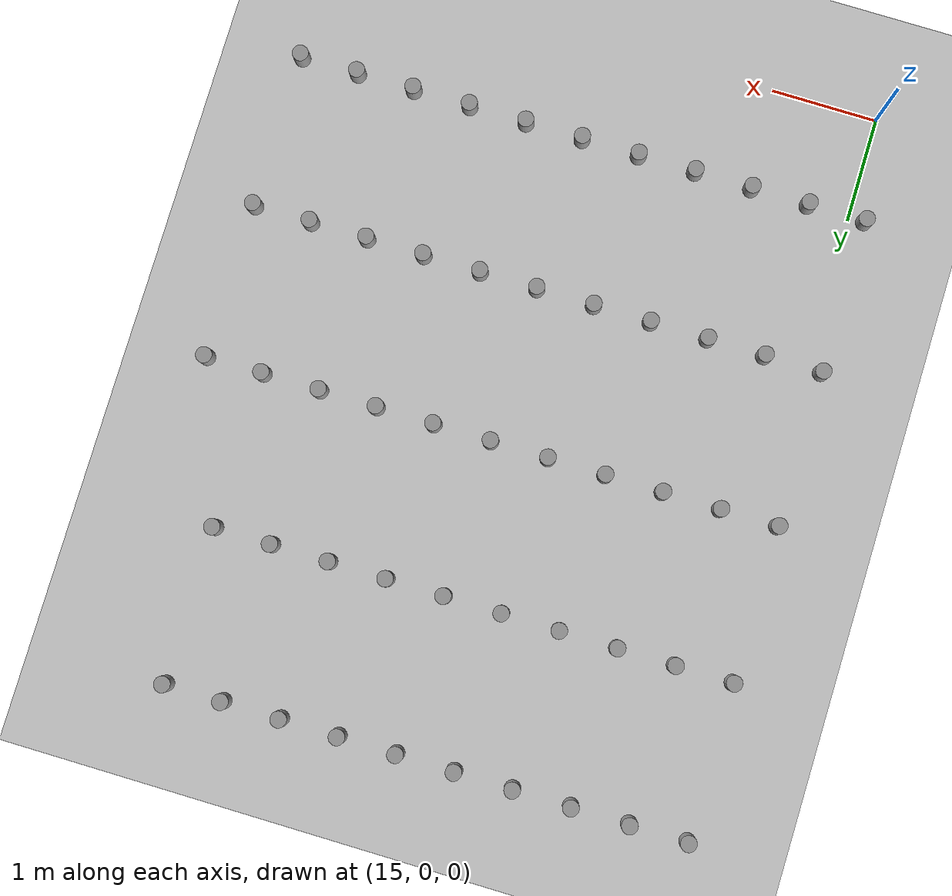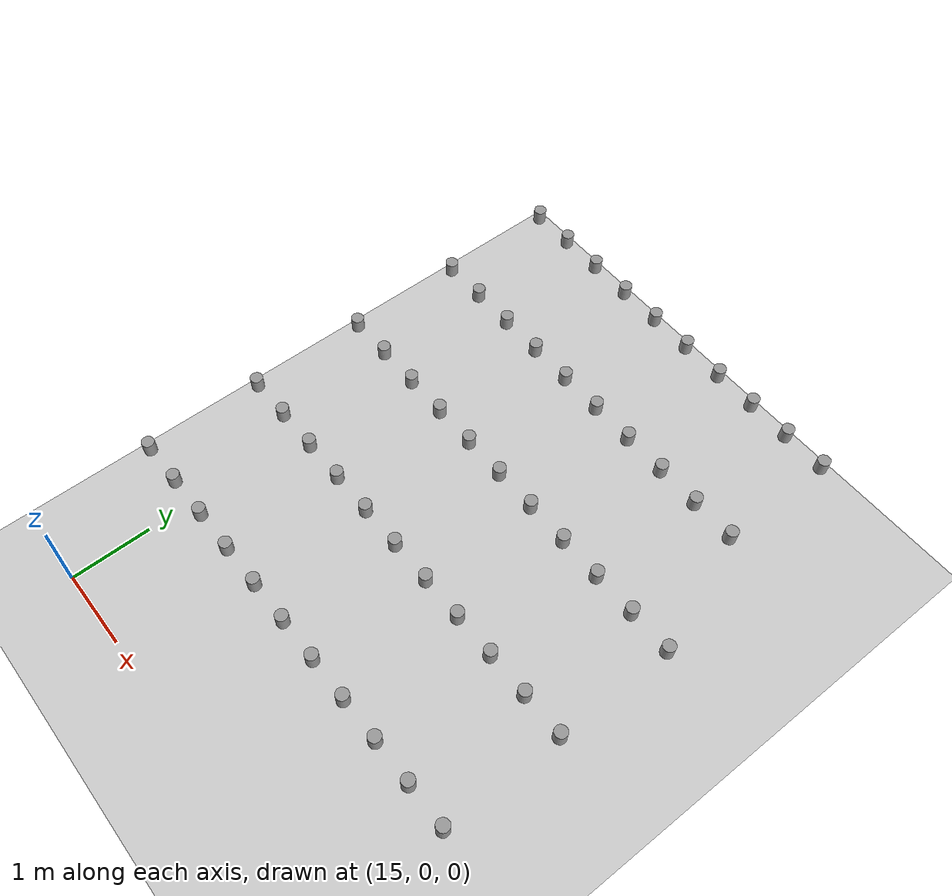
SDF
<sdf version="1.4">
 <world name="default">
  <model name="pot_320">
   <static>1</static>
   <link name="link_0">
    <collision name="collision">
     <geometry><cylinder><length>0.17</length><radius>0.07</radius></cylinder></geometry>
    </collision>
    <visual name="visual">
     <geometry><cylinder><length>0.17</length><radius>0.07</radius></cylinder></geometry>
     <material>
      <script><uri>file://media/materials/scripts/gazebo.material</uri><name>Gazebo/Grey</name></script>
      <emissive>0 0 0 1</emissive>
      <shader type="vertex"><normal_map>__default__</normal_map></shader>
      <specular>0.01 0.01 0.01 1</specular>
      <lighting>1</lighting>
      <ambient>0.1 0.1 0.1 1</ambient>
      <diffuse>0.05 0.05 0.05 1</diffuse>
     </material>
     <cast_shadows>0</cast_shadows>
    </visual>
    <pose>15.024 1.350 1.467 0.0 0.0 0.0</pose>
   </link>
  </model>
  <model name="pot_321">
   <static>1</static>
   <link name="link_0">
    <collision name="collision">
     <geometry><cylinder><length>0.17</length><radius>0.07</radius></cylinder></geometry>
    </collision>
    <visual name="visual">
     <geometry><cylinder><length>0.17</length><radius>0.07</radius></cylinder></geometry>
     <material>
      <script><uri>file://media/materials/scripts/gazebo.material</uri><name>Gazebo/Grey</name></script>
      <emissive>0 0 0 1</emissive>
      <shader type="vertex"><normal_map>__default__</normal_map></shader>
      <specular>0.01 0.01 0.01 1</specular>
      <lighting>1</lighting>
      <ambient>0.1 0.1 0.1 1</ambient>
      <diffuse>0.05 0.05 0.05 1</diffuse>
     </material>
     <cast_shadows>0</cast_shadows>
    </visual>
    <pose>15.024 2.700 1.467 0.0 0.0 0.0</pose>
   </link>
  </model>
  <model name="pot_322">
   <static>1</static>
   <link name="link_0">
    <collision name="collision">
     <geometry><cylinder><length>0.17</length><radius>0.07</radius></cylinder></geometry>
    </collision>
    <visual name="visual">
     <geometry><cylinder><length>0.17</length><radius>0.07</radius></cylinder></geometry>
     <material>
      <script><uri>file://media/materials/scripts/gazebo.material</uri><name>Gazebo/Grey</name></script>
      <emissive>0 0 0 1</emissive>
      <shader type="vertex"><normal_map>__default__</normal_map></shader>
      <specular>0.01 0.01 0.01 1</specular>
      <lighting>1</lighting>
      <ambient>0.1 0.1 0.1 1</ambient>
      <diffuse>0.05 0.05 0.05 1</diffuse>
     </material>
     <cast_shadows>0</cast_shadows>
    </visual>
    <pose>15.024 4.050 1.467 0.0 0.0 0.0</pose>
   </link>
  </model>
  <model name="pot_323">
   <static>1</static>
   <link name="link_0">
    <collision name="collision">
     <geometry><cylinder><length>0.17</length><radius>0.07</radius></cylinder></geometry>
    </collision>
    <visual name="visual">
     <geometry><cylinder><length>0.17</length><radius>0.07</radius></cylinder></geometry>
     <material>
      <script><uri>file://media/materials/scripts/gazebo.material</uri><name>Gazebo/Grey</name></script>
      <emissive>0 0 0 1</emissive>
      <shader type="vertex"><normal_map>__default__</normal_map></shader>
      <specular>0.01 0.01 0.01 1</specular>
      <lighting>1</lighting>
      <ambient>0.1 0.1 0.1 1</ambient>
      <diffuse>0.05 0.05 0.05 1</diffuse>
     </material>
     <cast_shadows>0</cast_shadows>
    </visual>
    <pose>15.024 5.400 1.467 0.0 0.0 0.0</pose>
   </link>
  </model>
  <model name="pot_324">
   <static>1</static>
   <link name="link_0">
    <collision name="collision">
     <geometry><cylinder><length>0.17</length><radius>0.07</radius></cylinder></geometry>
    </collision>
    <visual name="visual">
     <geometry><cylinder><length>0.17</length><radius>0.07</radius></cylinder></geometry>
     <material>
      <script><uri>file://media/materials/scripts/gazebo.material</uri><name>Gazebo/Grey</name></script>
      <emissive>0 0 0 1</emissive>
      <shader type="vertex"><normal_map>__default__</normal_map></shader>
      <specular>0.01 0.01 0.01 1</specular>
      <lighting>1</lighting>
      <ambient>0.1 0.1 0.1 1</ambient>
      <diffuse>0.05 0.05 0.05 1</diffuse>
     </material>
     <cast_shadows>0</cast_shadows>
    </visual>
    <pose>15.024 6.750 1.467 0.0 0.0 0.0</pose>
   </link>
  </model>
  <model name="pot_325">
   <static>1</static>
   <link name="link_0">
    <collision name="collision">
     <geometry><cylinder><length>0.17</length><radius>0.07</radius></cylinder></geometry>
    </collision>
    <visual name="visual">
     <geometry><cylinder><length>0.17</length><radius>0.07</radius></cylinder></geometry>
     <material>
      <script><uri>file://media/materials/scripts/gazebo.material</uri><name>Gazebo/Grey</name></script>
      <emissive>0 0 0 1</emissive>
      <shader type="vertex"><normal_map>__default__</normal_map></shader>
      <specular>0.01 0.01 0.01 1</specular>
      <lighting>1</lighting>
      <ambient>0.1 0.1 0.1 1</ambient>
      <diffuse>0.05 0.05 0.05 1</diffuse>
     </material>
     <cast_shadows>0</cast_shadows>
    </visual>
    <pose>15.524 1.350 1.467 0.0 0.0 0.0</pose>
   </link>
  </model>
  <model name="pot_326">
   <static>1</static>
   <link name="link_0">
    <collision name="collision">
     <geometry><cylinder><length>0.17</length><radius>0.07</radius></cylinder></geometry>
    </collision>
    <visual name="visual">
     <geometry><cylinder><length>0.17</length><radius>0.07</radius></cylinder></geometry>
     <material>
      <script><uri>file://media/materials/scripts/gazebo.material</uri><name>Gazebo/Grey</name></script>
      <emissive>0 0 0 1</emissive>
      <shader type="vertex"><normal_map>__default__</normal_map></shader>
      <specular>0.01 0.01 0.01 1</specular>
      <lighting>1</lighting>
      <ambient>0.1 0.1 0.1 1</ambient>
      <diffuse>0.05 0.05 0.05 1</diffuse>
     </material>
     <cast_shadows>0</cast_shadows>
    </visual>
    <pose>15.524 2.700 1.467 0.0 0.0 0.0</pose>
   </link>
  </model>
  <model name="pot_327">
   <static>1</static>
   <link name="link_0">
    <collision name="collision">
     <geometry><cylinder><length>0.17</length><radius>0.07</radius></cylinder></geometry>
    </collision>
    <visual name="visual">
     <geometry><cylinder><length>0.17</length><radius>0.07</radius></cylinder></geometry>
     <material>
      <script><uri>file://media/materials/scripts/gazebo.material</uri><name>Gazebo/Grey</name></script>
      <emissive>0 0 0 1</emissive>
      <shader type="vertex"><normal_map>__default__</normal_map></shader>
      <specular>0.01 0.01 0.01 1</specular>
      <lighting>1</lighting>
      <ambient>0.1 0.1 0.1 1</ambient>
      <diffuse>0.05 0.05 0.05 1</diffuse>
     </material>
     <cast_shadows>0</cast_shadows>
    </visual>
    <pose>15.524 4.050 1.467 0.0 0.0 0.0</pose>
   </link>
  </model>
  <model name="pot_328">
   <static>1</static>
   <link name="link_0">
    <collision name="collision">
     <geometry><cylinder><length>0.17</length><radius>0.07</radius></cylinder></geometry>
    </collision>
    <visual name="visual">
     <geometry><cylinder><length>0.17</length><radius>0.07</radius></cylinder></geometry>
     <material>
      <script><uri>file://media/materials/scripts/gazebo.material</uri><name>Gazebo/Grey</name></script>
      <emissive>0 0 0 1</emissive>
      <shader type="vertex"><normal_map>__default__</normal_map></shader>
      <specular>0.01 0.01 0.01 1</specular>
      <lighting>1</lighting>
      <ambient>0.1 0.1 0.1 1</ambient>
      <diffuse>0.05 0.05 0.05 1</diffuse>
     </material>
     <cast_shadows>0</cast_shadows>
    </visual>
    <pose>15.524 5.400 1.467 0.0 0.0 0.0</pose>
   </link>
  </model>
  <model name="pot_329">
   <static>1</static>
   <link name="link_0">
    <collision name="collision">
     <geometry><cylinder><length>0.17</length><radius>0.07</radius></cylinder></geometry>
    </collision>
    <visual name="visual">
     <geometry><cylinder><length>0.17</length><radius>0.07</radius></cylinder></geometry>
     <material>
      <script><uri>file://media/materials/scripts/gazebo.material</uri><name>Gazebo/Grey</name></script>
      <emissive>0 0 0 1</emissive>
      <shader type="vertex"><normal_map>__default__</normal_map></shader>
      <specular>0.01 0.01 0.01 1</specular>
      <lighting>1</lighting>
      <ambient>0.1 0.1 0.1 1</ambient>
      <diffuse>0.05 0.05 0.05 1</diffuse>
     </material>
     <cast_shadows>0</cast_shadows>
    </visual>
    <pose>15.524 6.750 1.467 0.0 0.0 0.0</pose>
   </link>
  </model>
  <model name="pot_330">
   <static>1</static>
   <link name="link_0">
    <collision name="collision">
     <geometry><cylinder><length>0.17</length><radius>0.07</radius></cylinder></geometry>
    </collision>
    <visual name="visual">
     <geometry><cylinder><length>0.17</length><radius>0.07</radius></cylinder></geometry>
     <material>
      <script><uri>file://media/materials/scripts/gazebo.material</uri><name>Gazebo/Grey</name></script>
      <emissive>0 0 0 1</emissive>
      <shader type="vertex"><normal_map>__default__</normal_map></shader>
      <specular>0.01 0.01 0.01 1</specular>
      <lighting>1</lighting>
      <ambient>0.1 0.1 0.1 1</ambient>
      <diffuse>0.05 0.05 0.05 1</diffuse>
     </material>
     <cast_shadows>0</cast_shadows>
    </visual>
    <pose>16.024 1.350 1.467 0.0 0.0 0.0</pose>
   </link>
  </model>
  <model name="pot_331">
   <static>1</static>
   <link name="link_0">
    <collision name="collision">
     <geometry><cylinder><length>0.17</length><radius>0.07</radius></cylinder></geometry>
    </collision>
    <visual name="visual">
     <geometry><cylinder><length>0.17</length><radius>0.07</radius></cylinder></geometry>
     <material>
      <script><uri>file://media/materials/scripts/gazebo.material</uri><name>Gazebo/Grey</name></script>
      <emissive>0 0 0 1</emissive>
      <shader type="vertex"><normal_map>__default__</normal_map></shader>
      <specular>0.01 0.01 0.01 1</specular>
      <lighting>1</lighting>
      <ambient>0.1 0.1 0.1 1</ambient>
      <diffuse>0.05 0.05 0.05 1</diffuse>
     </material>
     <cast_shadows>0</cast_shadows>
    </visual>
    <pose>16.024 2.700 1.467 0.0 0.0 0.0</pose>
   </link>
  </model>
  <model name="pot_332">
   <static>1</static>
   <link name="link_0">
    <collision name="collision">
     <geometry><cylinder><length>0.17</length><radius>0.07</radius></cylinder></geometry>
    </collision>
    <visual name="visual">
     <geometry><cylinder><length>0.17</length><radius>0.07</radius></cylinder></geometry>
     <material>
      <script><uri>file://media/materials/scripts/gazebo.material</uri><name>Gazebo/Grey</name></script>
      <emissive>0 0 0 1</emissive>
      <shader type="vertex"><normal_map>__default__</normal_map></shader>
      <specular>0.01 0.01 0.01 1</specular>
      <lighting>1</lighting>
      <ambient>0.1 0.1 0.1 1</ambient>
      <diffuse>0.05 0.05 0.05 1</diffuse>
     </material>
     <cast_shadows>0</cast_shadows>
    </visual>
    <pose>16.024 4.050 1.467 0.0 0.0 0.0</pose>
   </link>
  </model>
  <model name="pot_333">
   <static>1</static>
   <link name="link_0">
    <collision name="collision">
     <geometry><cylinder><length>0.17</length><radius>0.07</radius></cylinder></geometry>
    </collision>
    <visual name="visual">
     <geometry><cylinder><length>0.17</length><radius>0.07</radius></cylinder></geometry>
     <material>
      <script><uri>file://media/materials/scripts/gazebo.material</uri><name>Gazebo/Grey</name></script>
      <emissive>0 0 0 1</emissive>
      <shader type="vertex"><normal_map>__default__</normal_map></shader>
      <specular>0.01 0.01 0.01 1</specular>
      <lighting>1</lighting>
      <ambient>0.1 0.1 0.1 1</ambient>
      <diffuse>0.05 0.05 0.05 1</diffuse>
     </material>
     <cast_shadows>0</cast_shadows>
    </visual>
    <pose>16.024 5.400 1.467 0.0 0.0 0.0</pose>
   </link>
  </model>
  <model name="pot_334">
   <static>1</static>
   <link name="link_0">
    <collision name="collision">
     <geometry><cylinder><length>0.17</length><radius>0.07</radius></cylinder></geometry>
    </collision>
    <visual name="visual">
     <geometry><cylinder><length>0.17</length><radius>0.07</radius></cylinder></geometry>
     <material>
      <script><uri>file://media/materials/scripts/gazebo.material</uri><name>Gazebo/Grey</name></script>
      <emissive>0 0 0 1</emissive>
      <shader type="vertex"><normal_map>__default__</normal_map></shader>
      <specular>0.01 0.01 0.01 1</specular>
      <lighting>1</lighting>
      <ambient>0.1 0.1 0.1 1</ambient>
      <diffuse>0.05 0.05 0.05 1</diffuse>
     </material>
     <cast_shadows>0</cast_shadows>
    </visual>
    <pose>16.024 6.750 1.467 0.0 0.0 0.0</pose>
   </link>
  </model>
  <model name="pot_335">
   <static>1</static>
   <link name="link_0">
    <collision name="collision">
     <geometry><cylinder><length>0.17</length><radius>0.07</radius></cylinder></geometry>
    </collision>
    <visual name="visual">
     <geometry><cylinder><length>0.17</length><radius>0.07</radius></cylinder></geometry>
     <material>
      <script><uri>file://media/materials/scripts/gazebo.material</uri><name>Gazebo/Grey</name></script>
      <emissive>0 0 0 1</emissive>
      <shader type="vertex"><normal_map>__default__</normal_map></shader>
      <specular>0.01 0.01 0.01 1</specular>
      <lighting>1</lighting>
      <ambient>0.1 0.1 0.1 1</ambient>
      <diffuse>0.05 0.05 0.05 1</diffuse>
     </material>
     <cast_shadows>0</cast_shadows>
    </visual>
    <pose>16.524 1.350 1.467 0.0 0.0 0.0</pose>
   </link>
  </model>
  <model name="pot_336">
   <static>1</static>
   <link name="link_0">
    <collision name="collision">
     <geometry><cylinder><length>0.17</length><radius>0.07</radius></cylinder></geometry>
    </collision>
    <visual name="visual">
     <geometry><cylinder><length>0.17</length><radius>0.07</radius></cylinder></geometry>
     <material>
      <script><uri>file://media/materials/scripts/gazebo.material</uri><name>Gazebo/Grey</name></script>
      <emissive>0 0 0 1</emissive>
      <shader type="vertex"><normal_map>__default__</normal_map></shader>
      <specular>0.01 0.01 0.01 1</specular>
      <lighting>1</lighting>
      <ambient>0.1 0.1 0.1 1</ambient>
      <diffuse>0.05 0.05 0.05 1</diffuse>
     </material>
     <cast_shadows>0</cast_shadows>
    </visual>
    <pose>16.524 2.700 1.467 0.0 0.0 0.0</pose>
   </link>
  </model>
  <model name="pot_337">
   <static>1</static>
   <link name="link_0">
    <collision name="collision">
     <geometry><cylinder><length>0.17</length><radius>0.07</radius></cylinder></geometry>
    </collision>
    <visual name="visual">
     <geometry><cylinder><length>0.17</length><radius>0.07</radius></cylinder></geometry>
     <material>
      <script><uri>file://media/materials/scripts/gazebo.material</uri><name>Gazebo/Grey</name></script>
      <emissive>0 0 0 1</emissive>
      <shader type="vertex"><normal_map>__default__</normal_map></shader>
      <specular>0.01 0.01 0.01 1</specular>
      <lighting>1</lighting>
      <ambient>0.1 0.1 0.1 1</ambient>
      <diffuse>0.05 0.05 0.05 1</diffuse>
     </material>
     <cast_shadows>0</cast_shadows>
    </visual>
    <pose>16.524 4.050 1.467 0.0 0.0 0.0</pose>
   </link>
  </model>
  <model name="pot_338">
   <static>1</static>
   <link name="link_0">
    <collision name="collision">
     <geometry><cylinder><length>0.17</length><radius>0.07</radius></cylinder></geometry>
    </collision>
    <visual name="visual">
     <geometry><cylinder><length>0.17</length><radius>0.07</radius></cylinder></geometry>
     <material>
      <script><uri>file://media/materials/scripts/gazebo.material</uri><name>Gazebo/Grey</name></script>
      <emissive>0 0 0 1</emissive>
      <shader type="vertex"><normal_map>__default__</normal_map></shader>
      <specular>0.01 0.01 0.01 1</specular>
      <lighting>1</lighting>
      <ambient>0.1 0.1 0.1 1</ambient>
      <diffuse>0.05 0.05 0.05 1</diffuse>
     </material>
     <cast_shadows>0</cast_shadows>
    </visual>
    <pose>16.524 5.400 1.467 0.0 0.0 0.0</pose>
   </link>
  </model>
  <model name="pot_339">
   <static>1</static>
   <link name="link_0">
    <collision name="collision">
     <geometry><cylinder><length>0.17</length><radius>0.07</radius></cylinder></geometry>
    </collision>
    <visual name="visual">
     <geometry><cylinder><length>0.17</length><radius>0.07</radius></cylinder></geometry>
     <material>
      <script><uri>file://media/materials/scripts/gazebo.material</uri><name>Gazebo/Grey</name></script>
      <emissive>0 0 0 1</emissive>
      <shader type="vertex"><normal_map>__default__</normal_map></shader>
      <specular>0.01 0.01 0.01 1</specular>
      <lighting>1</lighting>
      <ambient>0.1 0.1 0.1 1</ambient>
      <diffuse>0.05 0.05 0.05 1</diffuse>
     </material>
     <cast_shadows>0</cast_shadows>
    </visual>
    <pose>16.524 6.750 1.467 0.0 0.0 0.0</pose>
   </link>
  </model>
  <model name="pot_340">
   <static>1</static>
   <link name="link_0">
    <collision name="collision">
     <geometry><cylinder><length>0.17</length><radius>0.07</radius></cylinder></geometry>
    </collision>
    <visual name="visual">
     <geometry><cylinder><length>0.17</length><radius>0.07</radius></cylinder></geometry>
     <material>
      <script><uri>file://media/materials/scripts/gazebo.material</uri><name>Gazebo/Grey</name></script>
      <emissive>0 0 0 1</emissive>
      <shader type="vertex"><normal_map>__default__</normal_map></shader>
      <specular>0.01 0.01 0.01 1</specular>
      <lighting>1</lighting>
      <ambient>0.1 0.1 0.1 1</ambient>
      <diffuse>0.05 0.05 0.05 1</diffuse>
     </material>
     <cast_shadows>0</cast_shadows>
    </visual>
    <pose>17.024 1.350 1.467 0.0 0.0 0.0</pose>
   </link>
  </model>
  <model name="pot_341">
   <static>1</static>
   <link name="link_0">
    <collision name="collision">
     <geometry><cylinder><length>0.17</length><radius>0.07</radius></cylinder></geometry>
    </collision>
    <visual name="visual">
     <geometry><cylinder><length>0.17</length><radius>0.07</radius></cylinder></geometry>
     <material>
      <script><uri>file://media/materials/scripts/gazebo.material</uri><name>Gazebo/Grey</name></script>
      <emissive>0 0 0 1</emissive>
      <shader type="vertex"><normal_map>__default__</normal_map></shader>
      <specular>0.01 0.01 0.01 1</specular>
      <lighting>1</lighting>
      <ambient>0.1 0.1 0.1 1</ambient>
      <diffuse>0.05 0.05 0.05 1</diffuse>
     </material>
     <cast_shadows>0</cast_shadows>
    </visual>
    <pose>17.024 2.700 1.467 0.0 0.0 0.0</pose>
   </link>
  </model>
  <model name="pot_342">
   <static>1</static>
   <link name="link_0">
    <collision name="collision">
     <geometry><cylinder><length>0.17</length><radius>0.07</radius></cylinder></geometry>
    </collision>
    <visual name="visual">
     <geometry><cylinder><length>0.17</length><radius>0.07</radius></cylinder></geometry>
     <material>
      <script><uri>file://media/materials/scripts/gazebo.material</uri><name>Gazebo/Grey</name></script>
      <emissive>0 0 0 1</emissive>
      <shader type="vertex"><normal_map>__default__</normal_map></shader>
      <specular>0.01 0.01 0.01 1</specular>
      <lighting>1</lighting>
      <ambient>0.1 0.1 0.1 1</ambient>
      <diffuse>0.05 0.05 0.05 1</diffuse>
     </material>
     <cast_shadows>0</cast_shadows>
    </visual>
    <pose>17.024 4.050 1.467 0.0 0.0 0.0</pose>
   </link>
  </model>
  <model name="pot_343">
   <static>1</static>
   <link name="link_0">
    <collision name="collision">
     <geometry><cylinder><length>0.17</length><radius>0.07</radius></cylinder></geometry>
    </collision>
    <visual name="visual">
     <geometry><cylinder><length>0.17</length><radius>0.07</radius></cylinder></geometry>
     <material>
      <script><uri>file://media/materials/scripts/gazebo.material</uri><name>Gazebo/Grey</name></script>
      <emissive>0 0 0 1</emissive>
      <shader type="vertex"><normal_map>__default__</normal_map></shader>
      <specular>0.01 0.01 0.01 1</specular>
      <lighting>1</lighting>
      <ambient>0.1 0.1 0.1 1</ambient>
      <diffuse>0.05 0.05 0.05 1</diffuse>
     </material>
     <cast_shadows>0</cast_shadows>
    </visual>
    <pose>17.024 5.400 1.467 0.0 0.0 0.0</pose>
   </link>
  </model>
  <model name="pot_344">
   <static>1</static>
   <link name="link_0">
    <collision name="collision">
     <geometry><cylinder><length>0.17</length><radius>0.07</radius></cylinder></geometry>
    </collision>
    <visual name="visual">
     <geometry><cylinder><length>0.17</length><radius>0.07</radius></cylinder></geometry>
     <material>
      <script><uri>file://media/materials/scripts/gazebo.material</uri><name>Gazebo/Grey</name></script>
      <emissive>0 0 0 1</emissive>
      <shader type="vertex"><normal_map>__default__</normal_map></shader>
      <specular>0.01 0.01 0.01 1</specular>
      <lighting>1</lighting>
      <ambient>0.1 0.1 0.1 1</ambient>
      <diffuse>0.05 0.05 0.05 1</diffuse>
     </material>
     <cast_shadows>0</cast_shadows>
    </visual>
    <pose>17.024 6.750 1.467 0.0 0.0 0.0</pose>
   </link>
  </model>
  <model name="pot_345">
   <static>1</static>
   <link name="link_0">
    <collision name="collision">
     <geometry><cylinder><length>0.17</length><radius>0.07</radius></cylinder></geometry>
    </collision>
    <visual name="visual">
     <geometry><cylinder><length>0.17</length><radius>0.07</radius></cylinder></geometry>
     <material>
      <script><uri>file://media/materials/scripts/gazebo.material</uri><name>Gazebo/Grey</name></script>
      <emissive>0 0 0 1</emissive>
      <shader type="vertex"><normal_map>__default__</normal_map></shader>
      <specular>0.01 0.01 0.01 1</specular>
      <lighting>1</lighting>
      <ambient>0.1 0.1 0.1 1</ambient>
      <diffuse>0.05 0.05 0.05 1</diffuse>
     </material>
     <cast_shadows>0</cast_shadows>
    </visual>
    <pose>17.524 1.350 1.467 0.0 0.0 0.0</pose>
   </link>
  </model>
  <model name="pot_346">
   <static>1</static>
   <link name="link_0">
    <collision name="collision">
     <geometry><cylinder><length>0.17</length><radius>0.07</radius></cylinder></geometry>
    </collision>
    <visual name="visual">
     <geometry><cylinder><length>0.17</length><radius>0.07</radius></cylinder></geometry>
     <material>
      <script><uri>file://media/materials/scripts/gazebo.material</uri><name>Gazebo/Grey</name></script>
      <emissive>0 0 0 1</emissive>
      <shader type="vertex"><normal_map>__default__</normal_map></shader>
      <specular>0.01 0.01 0.01 1</specular>
      <lighting>1</lighting>
      <ambient>0.1 0.1 0.1 1</ambient>
      <diffuse>0.05 0.05 0.05 1</diffuse>
     </material>
     <cast_shadows>0</cast_shadows>
    </visual>
    <pose>17.524 2.700 1.467 0.0 0.0 0.0</pose>
   </link>
  </model>
  <model name="pot_347">
   <static>1</static>
   <link name="link_0">
    <collision name="collision">
     <geometry><cylinder><length>0.17</length><radius>0.07</radius></cylinder></geometry>
    </collision>
    <visual name="visual">
     <geometry><cylinder><length>0.17</length><radius>0.07</radius></cylinder></geometry>
     <material>
      <script><uri>file://media/materials/scripts/gazebo.material</uri><name>Gazebo/Grey</name></script>
      <emissive>0 0 0 1</emissive>
      <shader type="vertex"><normal_map>__default__</normal_map></shader>
      <specular>0.01 0.01 0.01 1</specular>
      <lighting>1</lighting>
      <ambient>0.1 0.1 0.1 1</ambient>
      <diffuse>0.05 0.05 0.05 1</diffuse>
     </material>
     <cast_shadows>0</cast_shadows>
    </visual>
    <pose>17.524 4.050 1.467 0.0 0.0 0.0</pose>
   </link>
  </model>
  <model name="pot_348">
   <static>1</static>
   <link name="link_0">
    <collision name="collision">
     <geometry><cylinder><length>0.17</length><radius>0.07</radius></cylinder></geometry>
    </collision>
    <visual name="visual">
     <geometry><cylinder><length>0.17</length><radius>0.07</radius></cylinder></geometry>
     <material>
      <script><uri>file://media/materials/scripts/gazebo.material</uri><name>Gazebo/Grey</name></script>
      <emissive>0 0 0 1</emissive>
      <shader type="vertex"><normal_map>__default__</normal_map></shader>
      <specular>0.01 0.01 0.01 1</specular>
      <lighting>1</lighting>
      <ambient>0.1 0.1 0.1 1</ambient>
      <diffuse>0.05 0.05 0.05 1</diffuse>
     </material>
     <cast_shadows>0</cast_shadows>
    </visual>
    <pose>17.524 5.400 1.467 0.0 0.0 0.0</pose>
   </link>
  </model>
  <model name="pot_349">
   <static>1</static>
   <link name="link_0">
    <collision name="collision">
     <geometry><cylinder><length>0.17</length><radius>0.07</radius></cylinder></geometry>
    </collision>
    <visual name="visual">
     <geometry><cylinder><length>0.17</length><radius>0.07</radius></cylinder></geometry>
     <material>
      <script><uri>file://media/materials/scripts/gazebo.material</uri><name>Gazebo/Grey</name></script>
      <emissive>0 0 0 1</emissive>
      <shader type="vertex"><normal_map>__default__</normal_map></shader>
      <specular>0.01 0.01 0.01 1</specular>
      <lighting>1</lighting>
      <ambient>0.1 0.1 0.1 1</ambient>
      <diffuse>0.05 0.05 0.05 1</diffuse>
     </material>
     <cast_shadows>0</cast_shadows>
    </visual>
    <pose>17.524 6.750 1.467 0.0 0.0 0.0</pose>
   </link>
  </model>
  <model name="pot_350">
   <static>1</static>
   <link name="link_0">
    <collision name="collision">
     <geometry><cylinder><length>0.17</length><radius>0.07</radius></cylinder></geometry>
    </collision>
    <visual name="visual">
     <geometry><cylinder><length>0.17</length><radius>0.07</radius></cylinder></geometry>
     <material>
      <script><uri>file://media/materials/scripts/gazebo.material</uri><name>Gazebo/Grey</name></script>
      <emissive>0 0 0 1</emissive>
      <shader type="vertex"><normal_map>__default__</normal_map></shader>
      <specular>0.01 0.01 0.01 1</specular>
      <lighting>1</lighting>
      <ambient>0.1 0.1 0.1 1</ambient>
      <diffuse>0.05 0.05 0.05 1</diffuse>
     </material>
     <cast_shadows>0</cast_shadows>
    </visual>
    <pose>18.024 1.350 1.467 0.0 0.0 0.0</pose>
   </link>
  </model>
  <model name="pot_351">
   <static>1</static>
   <link name="link_0">
    <collision name="collision">
     <geometry><cylinder><length>0.17</length><radius>0.07</radius></cylinder></geometry>
    </collision>
    <visual name="visual">
     <geometry><cylinder><length>0.17</length><radius>0.07</radius></cylinder></geometry>
     <material>
      <script><uri>file://media/materials/scripts/gazebo.material</uri><name>Gazebo/Grey</name></script>
      <emissive>0 0 0 1</emissive>
      <shader type="vertex"><normal_map>__default__</normal_map></shader>
      <specular>0.01 0.01 0.01 1</specular>
      <lighting>1</lighting>
      <ambient>0.1 0.1 0.1 1</ambient>
      <diffuse>0.05 0.05 0.05 1</diffuse>
     </material>
     <cast_shadows>0</cast_shadows>
    </visual>
    <pose>18.024 2.700 1.467 0.0 0.0 0.0</pose>
   </link>
  </model>
  <model name="pot_352">
   <static>1</static>
   <link name="link_0">
    <collision name="collision">
     <geometry><cylinder><length>0.17</length><radius>0.07</radius></cylinder></geometry>
    </collision>
    <visual name="visual">
     <geometry><cylinder><length>0.17</length><radius>0.07</radius></cylinder></geometry>
     <material>
      <script><uri>file://media/materials/scripts/gazebo.material</uri><name>Gazebo/Grey</name></script>
      <emissive>0 0 0 1</emissive>
      <shader type="vertex"><normal_map>__default__</normal_map></shader>
      <specular>0.01 0.01 0.01 1</specular>
      <lighting>1</lighting>
      <ambient>0.1 0.1 0.1 1</ambient>
      <diffuse>0.05 0.05 0.05 1</diffuse>
     </material>
     <cast_shadows>0</cast_shadows>
    </visual>
    <pose>18.024 4.050 1.467 0.0 0.0 0.0</pose>
   </link>
  </model>
  <model name="pot_353">
   <static>1</static>
   <link name="link_0">
    <collision name="collision">
     <geometry><cylinder><length>0.17</length><radius>0.07</radius></cylinder></geometry>
    </collision>
    <visual name="visual">
     <geometry><cylinder><length>0.17</length><radius>0.07</radius></cylinder></geometry>
     <material>
      <script><uri>file://media/materials/scripts/gazebo.material</uri><name>Gazebo/Grey</name></script>
      <emissive>0 0 0 1</emissive>
      <shader type="vertex"><normal_map>__default__</normal_map></shader>
      <specular>0.01 0.01 0.01 1</specular>
      <lighting>1</lighting>
      <ambient>0.1 0.1 0.1 1</ambient>
      <diffuse>0.05 0.05 0.05 1</diffuse>
     </material>
     <cast_shadows>0</cast_shadows>
    </visual>
    <pose>18.024 5.400 1.467 0.0 0.0 0.0</pose>
   </link>
  </model>
  <model name="pot_354">
   <static>1</static>
   <link name="link_0">
    <collision name="collision">
     <geometry><cylinder><length>0.17</length><radius>0.07</radius></cylinder></geometry>
    </collision>
    <visual name="visual">
     <geometry><cylinder><length>0.17</length><radius>0.07</radius></cylinder></geometry>
     <material>
      <script><uri>file://media/materials/scripts/gazebo.material</uri><name>Gazebo/Grey</name></script>
      <emissive>0 0 0 1</emissive>
      <shader type="vertex"><normal_map>__default__</normal_map></shader>
      <specular>0.01 0.01 0.01 1</specular>
      <lighting>1</lighting>
      <ambient>0.1 0.1 0.1 1</ambient>
      <diffuse>0.05 0.05 0.05 1</diffuse>
     </material>
     <cast_shadows>0</cast_shadows>
    </visual>
    <pose>18.024 6.750 1.467 0.0 0.0 0.0</pose>
   </link>
  </model>
  <model name="pot_355">
   <static>1</static>
   <link name="link_0">
    <collision name="collision">
     <geometry><cylinder><length>0.17</length><radius>0.07</radius></cylinder></geometry>
    </collision>
    <visual name="visual">
     <geometry><cylinder><length>0.17</length><radius>0.07</radius></cylinder></geometry>
     <material>
      <script><uri>file://media/materials/scripts/gazebo.material</uri><name>Gazebo/Grey</name></script>
      <emissive>0 0 0 1</emissive>
      <shader type="vertex"><normal_map>__default__</normal_map></shader>
      <specular>0.01 0.01 0.01 1</specular>
      <lighting>1</lighting>
      <ambient>0.1 0.1 0.1 1</ambient>
      <diffuse>0.05 0.05 0.05 1</diffuse>
     </material>
     <cast_shadows>0</cast_shadows>
    </visual>
    <pose>18.524 1.350 1.467 0.0 0.0 0.0</pose>
   </link>
  </model>
  <model name="pot_356">
   <static>1</static>
   <link name="link_0">
    <collision name="collision">
     <geometry><cylinder><length>0.17</length><radius>0.07</radius></cylinder></geometry>
    </collision>
    <visual name="visual">
     <geometry><cylinder><length>0.17</length><radius>0.07</radius></cylinder></geometry>
     <material>
      <script><uri>file://media/materials/scripts/gazebo.material</uri><name>Gazebo/Grey</name></script>
      <emissive>0 0 0 1</emissive>
      <shader type="vertex"><normal_map>__default__</normal_map></shader>
      <specular>0.01 0.01 0.01 1</specular>
      <lighting>1</lighting>
      <ambient>0.1 0.1 0.1 1</ambient>
      <diffuse>0.05 0.05 0.05 1</diffuse>
     </material>
     <cast_shadows>0</cast_shadows>
    </visual>
    <pose>18.524 2.700 1.467 0.0 0.0 0.0</pose>
   </link>
  </model>
  <model name="pot_357">
   <static>1</static>
   <link name="link_0">
    <collision name="collision">
     <geometry><cylinder><length>0.17</length><radius>0.07</radius></cylinder></geometry>
    </collision>
    <visual name="visual">
     <geometry><cylinder><length>0.17</length><radius>0.07</radius></cylinder></geometry>
     <material>
      <script><uri>file://media/materials/scripts/gazebo.material</uri><name>Gazebo/Grey</name></script>
      <emissive>0 0 0 1</emissive>
      <shader type="vertex"><normal_map>__default__</normal_map></shader>
      <specular>0.01 0.01 0.01 1</specular>
      <lighting>1</lighting>
      <ambient>0.1 0.1 0.1 1</ambient>
      <diffuse>0.05 0.05 0.05 1</diffuse>
     </material>
     <cast_shadows>0</cast_shadows>
    </visual>
    <pose>18.524 4.050 1.467 0.0 0.0 0.0</pose>
   </link>
  </model>
  <model name="pot_358">
   <static>1</static>
   <link name="link_0">
    <collision name="collision">
     <geometry><cylinder><length>0.17</length><radius>0.07</radius></cylinder></geometry>
    </collision>
    <visual name="visual">
     <geometry><cylinder><length>0.17</length><radius>0.07</radius></cylinder></geometry>
     <material>
      <script><uri>file://media/materials/scripts/gazebo.material</uri><name>Gazebo/Grey</name></script>
      <emissive>0 0 0 1</emissive>
      <shader type="vertex"><normal_map>__default__</normal_map></shader>
      <specular>0.01 0.01 0.01 1</specular>
      <lighting>1</lighting>
      <ambient>0.1 0.1 0.1 1</ambient>
      <diffuse>0.05 0.05 0.05 1</diffuse>
     </material>
     <cast_shadows>0</cast_shadows>
    </visual>
    <pose>18.524 5.400 1.467 0.0 0.0 0.0</pose>
   </link>
  </model>
  <model name="pot_359">
   <static>1</static>
   <link name="link_0">
    <collision name="collision">
     <geometry><cylinder><length>0.17</length><radius>0.07</radius></cylinder></geometry>
    </collision>
    <visual name="visual">
     <geometry><cylinder><length>0.17</length><radius>0.07</radius></cylinder></geometry>
     <material>
      <script><uri>file://media/materials/scripts/gazebo.material</uri><name>Gazebo/Grey</name></script>
      <emissive>0 0 0 1</emissive>
      <shader type="vertex"><normal_map>__default__</normal_map></shader>
      <specular>0.01 0.01 0.01 1</specular>
      <lighting>1</lighting>
      <ambient>0.1 0.1 0.1 1</ambient>
      <diffuse>0.05 0.05 0.05 1</diffuse>
     </material>
     <cast_shadows>0</cast_shadows>
    </visual>
    <pose>18.524 6.750 1.467 0.0 0.0 0.0</pose>
   </link>
  </model>
  <model name="pot_360">
   <static>1</static>
   <link name="link_0">
    <collision name="collision">
     <geometry><cylinder><length>0.17</length><radius>0.07</radius></cylinder></geometry>
    </collision>
    <visual name="visual">
     <geometry><cylinder><length>0.17</length><radius>0.07</radius></cylinder></geometry>
     <material>
      <script><uri>file://media/materials/scripts/gazebo.material</uri><name>Gazebo/Grey</name></script>
      <emissive>0 0 0 1</emissive>
      <shader type="vertex"><normal_map>__default__</normal_map></shader>
      <specular>0.01 0.01 0.01 1</specular>
      <lighting>1</lighting>
      <ambient>0.1 0.1 0.1 1</ambient>
      <diffuse>0.05 0.05 0.05 1</diffuse>
     </material>
     <cast_shadows>0</cast_shadows>
    </visual>
    <pose>19.024 1.350 1.467 0.0 0.0 0.0</pose>
   </link>
  </model>
  <model name="pot_361">
   <static>1</static>
   <link name="link_0">
    <collision name="collision">
     <geometry><cylinder><length>0.17</length><radius>0.07</radius></cylinder></geometry>
    </collision>
    <visual name="visual">
     <geometry><cylinder><length>0.17</length><radius>0.07</radius></cylinder></geometry>
     <material>
      <script><uri>file://media/materials/scripts/gazebo.material</uri><name>Gazebo/Grey</name></script>
      <emissive>0 0 0 1</emissive>
      <shader type="vertex"><normal_map>__default__</normal_map></shader>
      <specular>0.01 0.01 0.01 1</specular>
      <lighting>1</lighting>
      <ambient>0.1 0.1 0.1 1</ambient>
      <diffuse>0.05 0.05 0.05 1</diffuse>
     </material>
     <cast_shadows>0</cast_shadows>
    </visual>
    <pose>19.024 2.700 1.467 0.0 0.0 0.0</pose>
   </link>
  </model>
  <model name="pot_362">
   <static>1</static>
   <link name="link_0">
    <collision name="collision">
     <geometry><cylinder><length>0.17</length><radius>0.07</radius></cylinder></geometry>
    </collision>
    <visual name="visual">
     <geometry><cylinder><length>0.17</length><radius>0.07</radius></cylinder></geometry>
     <material>
      <script><uri>file://media/materials/scripts/gazebo.material</uri><name>Gazebo/Grey</name></script>
      <emissive>0 0 0 1</emissive>
      <shader type="vertex"><normal_map>__default__</normal_map></shader>
      <specular>0.01 0.01 0.01 1</specular>
      <lighting>1</lighting>
      <ambient>0.1 0.1 0.1 1</ambient>
      <diffuse>0.05 0.05 0.05 1</diffuse>
     </material>
     <cast_shadows>0</cast_shadows>
    </visual>
    <pose>19.024 4.050 1.467 0.0 0.0 0.0</pose>
   </link>
  </model>
  <model name="pot_363">
   <static>1</static>
   <link name="link_0">
    <collision name="collision">
     <geometry><cylinder><length>0.17</length><radius>0.07</radius></cylinder></geometry>
    </collision>
    <visual name="visual">
     <geometry><cylinder><length>0.17</length><radius>0.07</radius></cylinder></geometry>
     <material>
      <script><uri>file://media/materials/scripts/gazebo.material</uri><name>Gazebo/Grey</name></script>
      <emissive>0 0 0 1</emissive>
      <shader type="vertex"><normal_map>__default__</normal_map></shader>
      <specular>0.01 0.01 0.01 1</specular>
      <lighting>1</lighting>
      <ambient>0.1 0.1 0.1 1</ambient>
      <diffuse>0.05 0.05 0.05 1</diffuse>
     </material>
     <cast_shadows>0</cast_shadows>
    </visual>
    <pose>19.024 5.400 1.467 0.0 0.0 0.0</pose>
   </link>
  </model>
  <model name="pot_364">
   <static>1</static>
   <link name="link_0">
    <collision name="collision">
     <geometry><cylinder><length>0.17</length><radius>0.07</radius></cylinder></geometry>
    </collision>
    <visual name="visual">
     <geometry><cylinder><length>0.17</length><radius>0.07</radius></cylinder></geometry>
     <material>
      <script><uri>file://media/materials/scripts/gazebo.material</uri><name>Gazebo/Grey</name></script>
      <emissive>0 0 0 1</emissive>
      <shader type="vertex"><normal_map>__default__</normal_map></shader>
      <specular>0.01 0.01 0.01 1</specular>
      <lighting>1</lighting>
      <ambient>0.1 0.1 0.1 1</ambient>
      <diffuse>0.05 0.05 0.05 1</diffuse>
     </material>
     <cast_shadows>0</cast_shadows>
    </visual>
    <pose>19.024 6.750 1.467 0.0 0.0 0.0</pose>
   </link>
  </model>
  <model name="pot_365">
   <static>1</static>
   <link name="link_0">
    <collision name="collision">
     <geometry><cylinder><length>0.17</length><radius>0.07</radius></cylinder></geometry>
    </collision>
    <visual name="visual">
     <geometry><cylinder><length>0.17</length><radius>0.07</radius></cylinder></geometry>
     <material>
      <script><uri>file://media/materials/scripts/gazebo.material</uri><name>Gazebo/Grey</name></script>
      <emissive>0 0 0 1</emissive>
      <shader type="vertex"><normal_map>__default__</normal_map></shader>
      <specular>0.01 0.01 0.01 1</specular>
      <lighting>1</lighting>
      <ambient>0.1 0.1 0.1 1</ambient>
      <diffuse>0.05 0.05 0.05 1</diffuse>
     </material>
     <cast_shadows>0</cast_shadows>
    </visual>
    <pose>19.524 1.350 1.467 0.0 0.0 0.0</pose>
   </link>
  </model>
  <model name="pot_366">
   <static>1</static>
   <link name="link_0">
    <collision name="collision">
     <geometry><cylinder><length>0.17</length><radius>0.07</radius></cylinder></geometry>
    </collision>
    <visual name="visual">
     <geometry><cylinder><length>0.17</length><radius>0.07</radius></cylinder></geometry>
     <material>
      <script><uri>file://media/materials/scripts/gazebo.material</uri><name>Gazebo/Grey</name></script>
      <emissive>0 0 0 1</emissive>
      <shader type="vertex"><normal_map>__default__</normal_map></shader>
      <specular>0.01 0.01 0.01 1</specular>
      <lighting>1</lighting>
      <ambient>0.1 0.1 0.1 1</ambient>
      <diffuse>0.05 0.05 0.05 1</diffuse>
     </material>
     <cast_shadows>0</cast_shadows>
    </visual>
    <pose>19.524 2.700 1.467 0.0 0.0 0.0</pose>
   </link>
  </model>
  <model name="pot_367">
   <static>1</static>
   <link name="link_0">
    <collision name="collision">
     <geometry><cylinder><length>0.17</length><radius>0.07</radius></cylinder></geometry>
    </collision>
    <visual name="visual">
     <geometry><cylinder><length>0.17</length><radius>0.07</radius></cylinder></geometry>
     <material>
      <script><uri>file://media/materials/scripts/gazebo.material</uri><name>Gazebo/Grey</name></script>
      <emissive>0 0 0 1</emissive>
      <shader type="vertex"><normal_map>__default__</normal_map></shader>
      <specular>0.01 0.01 0.01 1</specular>
      <lighting>1</lighting>
      <ambient>0.1 0.1 0.1 1</ambient>
      <diffuse>0.05 0.05 0.05 1</diffuse>
     </material>
     <cast_shadows>0</cast_shadows>
    </visual>
    <pose>19.524 4.050 1.467 0.0 0.0 0.0</pose>
   </link>
  </model>
  <model name="pot_368">
   <static>1</static>
   <link name="link_0">
    <collision name="collision">
     <geometry><cylinder><length>0.17</length><radius>0.07</radius></cylinder></geometry>
    </collision>
    <visual name="visual">
     <geometry><cylinder><length>0.17</length><radius>0.07</radius></cylinder></geometry>
     <material>
      <script><uri>file://media/materials/scripts/gazebo.material</uri><name>Gazebo/Grey</name></script>
      <emissive>0 0 0 1</emissive>
      <shader type="vertex"><normal_map>__default__</normal_map></shader>
      <specular>0.01 0.01 0.01 1</specular>
      <lighting>1</lighting>
      <ambient>0.1 0.1 0.1 1</ambient>
      <diffuse>0.05 0.05 0.05 1</diffuse>
     </material>
     <cast_shadows>0</cast_shadows>
    </visual>
    <pose>19.524 5.400 1.467 0.0 0.0 0.0</pose>
   </link>
  </model>
  <model name="pot_369">
   <static>1</static>
   <link name="link_0">
    <collision name="collision">
     <geometry><cylinder><length>0.17</length><radius>0.07</radius></cylinder></geometry>
    </collision>
    <visual name="visual">
     <geometry><cylinder><length>0.17</length><radius>0.07</radius></cylinder></geometry>
     <material>
      <script><uri>file://media/materials/scripts/gazebo.material</uri><name>Gazebo/Grey</name></script>
      <emissive>0 0 0 1</emissive>
      <shader type="vertex"><normal_map>__default__</normal_map></shader>
      <specular>0.01 0.01 0.01 1</specular>
      <lighting>1</lighting>
      <ambient>0.1 0.1 0.1 1</ambient>
      <diffuse>0.05 0.05 0.05 1</diffuse>
     </material>
     <cast_shadows>0</cast_shadows>
    </visual>
    <pose>19.524 6.750 1.467 0.0 0.0 0.0</pose>
   </link>
  </model>
  <model name="pot_370">
   <static>1</static>
   <link name="link_0">
    <collision name="collision">
     <geometry><cylinder><length>0.17</length><radius>0.07</radius></cylinder></geometry>
    </collision>
    <visual name="visual">
     <geometry><cylinder><length>0.17</length><radius>0.07</radius></cylinder></geometry>
     <material>
      <script><uri>file://media/materials/scripts/gazebo.material</uri><name>Gazebo/Grey</name></script>
      <emissive>0 0 0 1</emissive>
      <shader type="vertex"><normal_map>__default__</normal_map></shader>
      <specular>0.01 0.01 0.01 1</specular>
      <lighting>1</lighting>
      <ambient>0.1 0.1 0.1 1</ambient>
      <diffuse>0.05 0.05 0.05 1</diffuse>
     </material>
     <cast_shadows>0</cast_shadows>
    </visual>
    <pose>20.024 1.350 1.467 0.0 0.0 0.0</pose>
   </link>
  </model>
  <model name="pot_371">
   <static>1</static>
   <link name="link_0">
    <collision name="collision">
     <geometry><cylinder><length>0.17</length><radius>0.07</radius></cylinder></geometry>
    </collision>
    <visual name="visual">
     <geometry><cylinder><length>0.17</length><radius>0.07</radius></cylinder></geometry>
     <material>
      <script><uri>file://media/materials/scripts/gazebo.material</uri><name>Gazebo/Grey</name></script>
      <emissive>0 0 0 1</emissive>
      <shader type="vertex"><normal_map>__default__</normal_map></shader>
      <specular>0.01 0.01 0.01 1</specular>
      <lighting>1</lighting>
      <ambient>0.1 0.1 0.1 1</ambient>
      <diffuse>0.05 0.05 0.05 1</diffuse>
     </material>
     <cast_shadows>0</cast_shadows>
    </visual>
    <pose>20.024 2.700 1.467 0.0 0.0 0.0</pose>
   </link>
  </model>
  <model name="pot_372">
   <static>1</static>
   <link name="link_0">
    <collision name="collision">
     <geometry><cylinder><length>0.17</length><radius>0.07</radius></cylinder></geometry>
    </collision>
    <visual name="visual">
     <geometry><cylinder><length>0.17</length><radius>0.07</radius></cylinder></geometry>
     <material>
      <script><uri>file://media/materials/scripts/gazebo.material</uri><name>Gazebo/Grey</name></script>
      <emissive>0 0 0 1</emissive>
      <shader type="vertex"><normal_map>__default__</normal_map></shader>
      <specular>0.01 0.01 0.01 1</specular>
      <lighting>1</lighting>
      <ambient>0.1 0.1 0.1 1</ambient>
      <diffuse>0.05 0.05 0.05 1</diffuse>
     </material>
     <cast_shadows>0</cast_shadows>
    </visual>
    <pose>20.024 4.050 1.467 0.0 0.0 0.0</pose>
   </link>
  </model>
  <include><uri>model://sun</uri></include>
  <include><uri>model://ground_plane</uri></include>
 </world>
</sdf>
